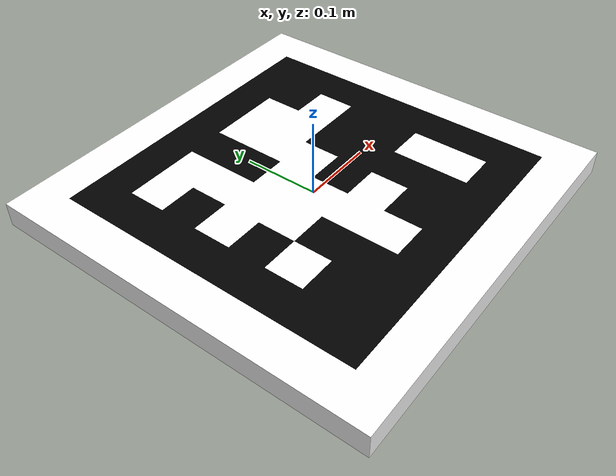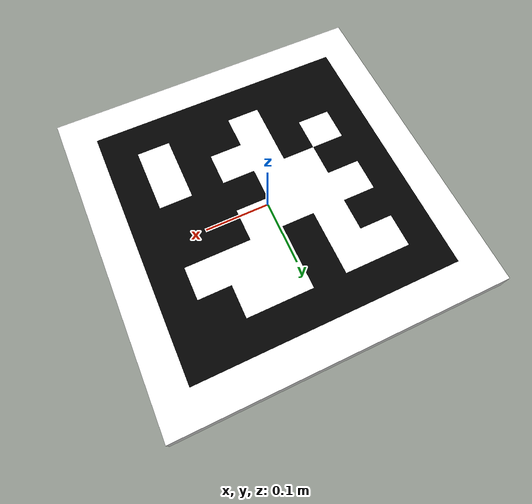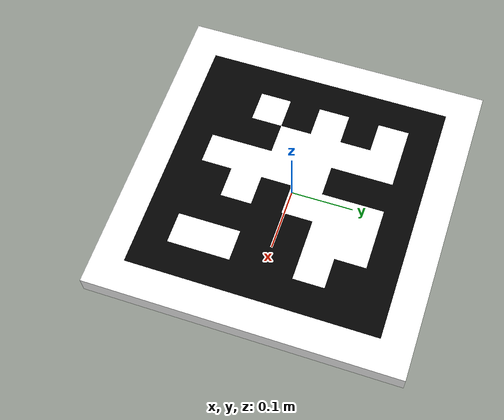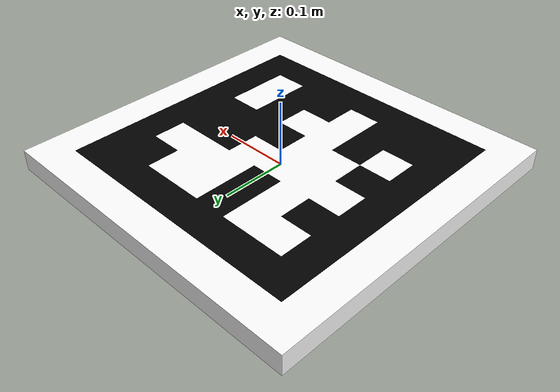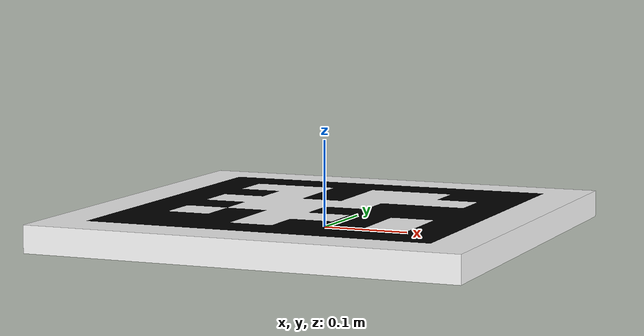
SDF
<?xml version="1.0" ?>

<sdf version="1.6">
  <model name="apriltag_1">
    <static>true</static>
    <link name="link">
      <visual name="visual">
        <geometry>
          <mesh>
            <uri>model://apriltag_1/meshes/apriltag_1.dae</uri>
          <scale>1.0 1.0 1.0</scale></mesh>
        </geometry>
      </visual>
    </link>
  </model>
</sdf>
